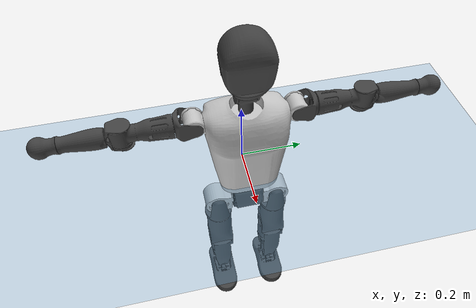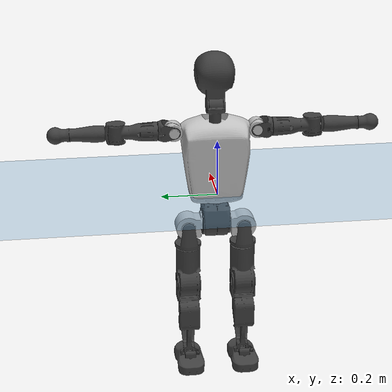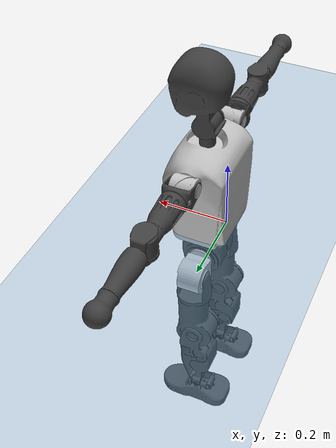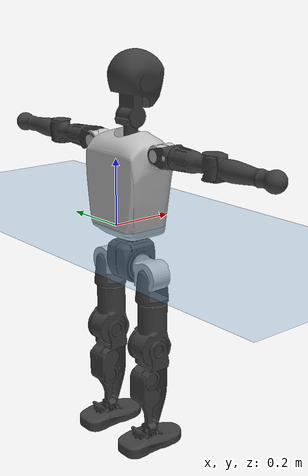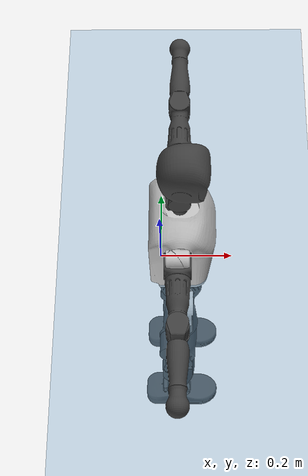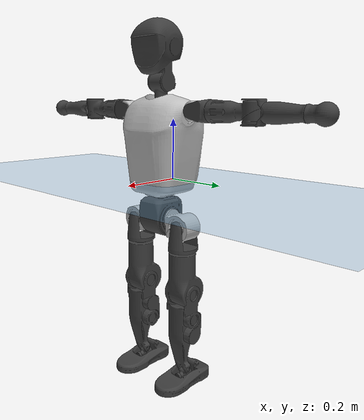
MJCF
<mujoco model="T1">
  <compiler angle="radian" assetdir="assets" balanceinertia="true" inertiafromgeom="false"/>

  <option timestep="0.005" density="1.2" viscosity="2e-05"/>

  <size nkey="1"/>

  <visual>
    <quality shadowsize="8192"/>
    <map shadowclip="0.5"/>
  </visual>

  <default>
    <default class="/">
      <joint armature="0.01" damping="0.01" frictionloss="0.1"/>
      <geom contype="0" conaffinity="0" group="1" solref="-1000 -80"/>
      <site size="0.01 0.005 0.005" group="5"/>
      <general forcelimited="true" biastype="affine" gainprm="25" biasprm="0 -25 -0.6"/>
      <default class="t1">
        <geom rgba="0.25 0.25 0.25 1"/>
        <default class="visual">
          <geom type="mesh" group="2"/>
        </default>
        <default class="collision">
          <geom group="3"/>
        </default>
        <default class="foot">
          <geom size="0.1115 0.05 0.015" type="box" condim="6" group="4" priority="1" solimp="0.015 1 0.015"/>
        </default>
        <default class="reward_collision_sphere">
          <geom group="5" rgba="1 0 0 1"/>
        </default>
      </default>
    </default>
  </default>

  <asset>
    <texture type="skybox" colorspace="auto" name="//unnamed_texture_0" builtin="gradient" rgb1="0.95 0.95 0.95" rgb2="0.95 0.95 0.95" width="100" height="600"/>
    <texture type="2d" colorspace="auto" name="texplane" builtin="checker" rgb1="0.345 0.575 0.748" rgb2="0.345 0.575 0.748" markrgb="1 1 1" width="512" height="512"/>
    <material name="MatPlane" class="/" texture="texplane" texuniform="true" texrepeat="2 2" specular="0.9"/>
    <mesh name="Trunk" class="/" file="Trunk.stl"/>
    <mesh name="H1" class="/" file="H1.stl"/>
    <mesh name="H2" class="/" file="H2.stl"/>
    <mesh name="AL1" class="/" file="AL1.stl"/>
    <mesh name="AL2" class="/" file="AL2.stl"/>
    <mesh name="AL3" class="/" file="AL3.stl"/>
    <mesh name="left_hand_link" class="/" file="left_hand_link.stl"/>
    <mesh name="AR1" class="/" file="AR1.stl"/>
    <mesh name="AR2" class="/" file="AR2.stl"/>
    <mesh name="AR3" class="/" file="AR3.stl"/>
    <mesh name="right_hand_link" class="/" file="right_hand_link.stl"/>
    <mesh name="Waist" class="/" file="Waist.stl"/>
    <mesh name="Hip_Pitch_Left" class="/" file="Hip_Pitch_Left.stl"/>
    <mesh name="Hip_Roll_Left" class="/" file="Hip_Roll_Left.stl"/>
    <mesh name="Hip_Yaw_Left" class="/" file="Hip_Yaw_Left.stl"/>
    <mesh name="Shank_Left" class="/" file="Shank_Left.stl"/>
    <mesh name="Ankle_Cross_Left" class="/" file="Ankle_Cross_Left.stl"/>
    <mesh name="left_foot_link" class="/" file="left_foot_link.stl"/>
    <mesh name="Hip_Pitch_Right" class="/" file="Hip_Pitch_Right.stl"/>
    <mesh name="Hip_Roll_Right" class="/" file="Hip_Roll_Right.stl"/>
    <mesh name="Hip_Yaw_Right" class="/" file="Hip_Yaw_Right.stl"/>
    <mesh name="Shank_Right" class="/" file="Shank_Right.stl"/>
    <mesh name="Ankle_Cross_Right" class="/" file="Ankle_Cross_Right.stl"/>
    <mesh name="right_foot_link" class="/" file="right_foot_link.stl"/>
  </asset>

  <worldbody>
    <geom name="floor" class="/" size="100 100 0.125" type="plane" group="0" material="MatPlane"/>
    <light name="toplight_shadow" class="/" pos="0 0 5" dir="0.0990148 0.0990148 -0.990148" type="directional" ambient="0.04 0.04 0.04" diffuse="0.55 0.55 0.55" specular="0.12 0.12 0.12"/>
    <light name="toplight_fill" class="/" pos="0 0 5" dir="0.0990148 0.0990148 -0.990148" type="directional" castshadow="false" ambient="0.04 0.04 0.04" diffuse="0.3 0.3 0.3" specular="0.08 0.08 0.08"/>
    <body name="trunk" childclass="t1" pos="0.000305101 0.000840069 -5.35865e-05" quat="1 6.12018e-05 0.000113094 -0.000138303">
      <inertial pos="0.0485513 -0.000343083 0.110757" quat="0.99996 0.00124664 -0.00884145 0.000685919" mass="10.4802" diaginertia="0.0494536 0.0611553 0.0689174"/>
      <joint name="//unnamed_joint_0" type="free" armature="0" damping="0" frictionloss="0"/>
      <geom name="//unnamed_geom_1" class="visual" rgba="0.76 0.76 0.76 1" mesh="Trunk"/>
      <geom name="//unnamed_geom_2" class="collision" size="0.0721589 0.0962119 0.144318" pos="0.0531397 0 0.125614" type="box"/>
      <geom name="//unnamed_geom_3" class="reward_collision_sphere" size="0.110644" pos="0.0531397 0 0.104678"/>
      <geom name="//unnamed_geom_4" class="reward_collision_sphere" size="0.0144318" pos="0.0531397 0.0810827 0"/>
      <geom name="//unnamed_geom_5" class="reward_collision_sphere" size="0.0144318" pos="0.0531397 -0.0810827 0"/>
      <geom name="//unnamed_geom_6" class="reward_collision_sphere" size="0.0144318" pos="0.0531397 0.102069 0.188421"/>
      <geom name="//unnamed_geom_7" class="reward_collision_sphere" size="0.0144318" pos="0.0531397 -0.102069 0.188421"/>
      <site name="imu" pos="-0.0039176 0.00222014 0.0038905" size="0.00962119"/>
      <camera name="track" pos="0 -1.90783 0" quat="0.707107 0.707107 0 0" mode="trackcom"/>
      <camera name="ego_camera" pos="0.108051 0 0.439649" quat="-0.5 -0.5 0.5 0.5"/>
      <body name="H1" pos="0.0559324 -0.000970897 0.253561" quat="1 -7.99663e-05 -0.000226647 -0.000124117">
        <inertial pos="-0.000130231 -0.00101285 0.059385" quat="0.763033 -0.0126801 0.00174992 0.646233" mass="0.38651" diaginertia="0.00012853 0.000173485 0.000187807"/>
        <joint name="AAHead_yaw" pos="0 0 0" axis="0.00174898 -0.000522887 0.999998" range="-1.5745 1.56248" armature="0.0100728" damping="0.00983545" frictionloss="0.0967208"/>
        <geom name="//unnamed_geom_8" class="visual" mesh="H1"/>
        <body name="H2" pos="-0.00127931 0.000285936 0.0639683" quat="1 0.000172753 0.000125876 0.000184431">
          <inertial pos="0.00589887 0.000805255 0.103415" quat="0.988652 0.106128 -0.0743635 -0.0759823" mass="0.562416" diaginertia="0.00111082 0.00152586 0.00217313"/>
          <joint name="Head_pitch" pos="0 0 0" axis="0.00285624 -0.999994 -0.00189528" range="-1.22118 0.350563" armature="0.00939526" damping="0.00607977" frictionloss="0.101632"/>
          <geom name="//unnamed_geom_9" class="visual" mesh="H2"/>
          <geom name="//unnamed_geom_10" class="collision" size="0.0769695" pos="0.00885661 0 0.115146"/>
          <geom name="//unnamed_geom_11" class="reward_collision_sphere" size="0.0865907" pos="0.0177132 0 0.104678"/>
        </body>
      </body>
      <body name="AL1" pos="0.051717 0.101311 0.228474" quat="1 8.00001e-06 0.000427142 -2.59088e-05">
        <inertial pos="-0.00124241 0.0427177 -0.000144311" quat="0.504241 0.495637 -0.504286 0.495762" mass="0.468279" diaginertia="0.000742579 0.00101416 0.000368547"/>
        <joint name="Left_Shoulder_Pitch" pos="0 0 0" axis="-0.00214708 0.999989 -0.00412926" stiffness="0.000967045" range="-3.30661 1.23642" armature="0.00938342" damping="0.00829506" frictionloss="0.097047"/>
        <geom name="//unnamed_geom_12" class="visual" rgba="0.76 0.76 0.76 1" mesh="AL1"/>
        <body name="AL2" pos="0.00122691 0.0455297 0.000698266" quat="1 5.45545e-08 6.33388e-05 1.87774e-05">
          <inertial pos="0.00253247 0.0369059 7.26194e-05" quat="0.48856 0.509496 -0.488437 0.512983" mass="0.144154" diaginertia="0.000220292 0.000273597 0.000222931"/>
          <joint name="Left_Shoulder_Roll" pos="0 0 0" axis="-0.999994 0.00233715 0.00250908" range="-1.57014 1.74619" armature="0.00949815" damping="0.00543638" frictionloss="0.0953722"/>
          <geom name="//unnamed_geom_13" class="visual" mesh="AL2"/>
          <body name="AL3" pos="0.000609384 0.0583391 -0.000384793" quat="1 -0.000121144 -9.8069e-05 4.18073e-05">
            <inertial pos="0.000696056 0.0814818 -0.000272491" quat="0.707394 0.706815 -0.00231328 -0.00125788" mass="0.905174" diaginertia="0.00689863 0.0100435 0.000764877"/>
            <joint name="Left_Elbow_Pitch" pos="0 0 0" axis="0.000680042 -0.999999 0.000762645" range="-2.27257 2.25851" armature="0.00966485" damping="0.0151522" frictionloss="0.0996967"/>
            <geom name="//unnamed_geom_14" class="visual" mesh="AL3"/>
            <geom name="//unnamed_geom_15" class="collision" size="0.0288636 0.0721589" pos="0 0.0476957 0" quat="0.707105 0.707108 0 0" type="cylinder"/>
            <geom name="//unnamed_geom_16" class="reward_collision_sphere" size="0.0346363"/>
            <body name="left_hand_link" pos="0.000676232 0.139783 -0.000308052" quat="1 9.88213e-05 4.63016e-06 -0.000170345">
              <inertial pos="0.000131024 0.105502 0.000582186" quat="0.7081 0.706112 -0.000242968 4.78395e-07" mass="0.29095" diaginertia="0.00442146 0.00642725 0.000268733"/>
              <joint name="Left_Elbow_Yaw" pos="0 0 0" axis="0.000750928 0.00215849 0.999997" stiffness="0.00200707" range="-2.44071 -0.00526622" armature="0.0091431" damping="0.00800225" frictionloss="0.0960606"/>
              <geom name="//unnamed_geom_17" class="visual" mesh="left_hand_link"/>
              <geom name="//unnamed_geom_18" class="collision" size="0.0288636 0.0841854" pos="0 0.124009 0" quat="0.707105 0.707108 0 0" type="cylinder"/>
              <geom name="//unnamed_geom_19" class="reward_collision_sphere" size="0.048106"/>
              <geom name="//unnamed_geom_20" class="reward_collision_sphere" size="0.0336742" pos="0 0.104931 0"/>
              <geom name="//unnamed_geom_21" class="reward_collision_sphere" size="0.0336742" pos="0 0.205092 0"/>
            </body>
          </body>
        </body>
      </body>
      <body name="AR1" pos="0.0502025 -0.101932 0.229002" quat="1 -0.000309057 0.000701312 0.000265798">
        <inertial pos="-0.000744901 -0.0423841 -0.000773982" quat="0.504306 0.496084 -0.503947 0.495594" mass="0.475657" diaginertia="0.000755492 0.00103113 0.000369703"/>
        <joint name="Right_Shoulder_Pitch" pos="0 0 0" axis="0.00294692 -0.999994 -0.00186681" range="-1.24447 3.31145" armature="0.009659" damping="0.00577781" frictionloss="0.0993919"/>
        <geom name="//unnamed_geom_22" class="visual" rgba="0.76 0.76 0.76 1" mesh="AR1"/>
        <body name="AR2" pos="-0.000516411 -0.0444643 -0.000256558" quat="1 2.33695e-06 2.69279e-05 1.3042e-05">
          <inertial pos="0.00379666 -0.0362963 5.24809e-05" quat="0.513109 0.485721 -0.514033 0.486379" mass="0.143791" diaginertia="0.000220481 0.000272427 0.000223829"/>
          <joint name="Right_Shoulder_Roll" pos="0 0 0" axis="-0.999946 -0.00759024 0.00707996" range="-1.72611 1.58622" armature="0.00965782" damping="0.00717394" frictionloss="0.0949734"/>
          <geom name="//unnamed_geom_23" class="visual" mesh="AR2"/>
          <body name="AR3" pos="0.000519669 -0.0577366 0.000259869" quat="1 3.30646e-05 3.60961e-05 -1.16173e-05">
            <inertial pos="0.00071627 -0.0817451 -0.000738349" quat="0.707699 0.706509 0.00153879 0.00197353" mass="0.911537" diaginertia="0.00715835 0.0103491 0.000800618"/>
            <joint name="Right_Elbow_Pitch" pos="0 0 0" axis="0.00383462 0.999987 -0.00334178" range="-2.26568 2.24279" armature="0.00960329" damping="0.00609504" frictionloss="0.0922498"/>
            <geom name="//unnamed_geom_24" class="visual" mesh="AR3"/>
            <geom name="//unnamed_geom_25" class="collision" size="0.0288636 0.0721589" pos="0 -0.0476957 0" quat="0.707105 0.707108 0 0" type="cylinder"/>
            <geom name="//unnamed_geom_26" class="reward_collision_sphere" size="0.0346363"/>
            <body name="right_hand_link" pos="0.000595773 -0.13929 -0.000387453" quat="1 -1.53711e-05 -3.65727e-05 7.35879e-06">
              <inertial pos="0.000306714 -0.104703 0.00104132" quat="0.706088 0.708124 0.000288771 0.000550989" mass="0.288294" diaginertia="0.00432629 0.00641296 0.00026824"/>
              <joint name="Right_Elbow_Yaw" pos="0 0 0" axis="0.000297957 -0.000483701 1" stiffness="0.000286938" range="0.000374732 2.43871" armature="0.00975745" damping="0.00803504" frictionloss="0.0955232"/>
              <geom name="//unnamed_geom_27" class="visual" mesh="right_hand_link"/>
              <geom name="//unnamed_geom_28" class="collision" size="0.0288636 0.0841854" pos="0 -0.124009 0" quat="0.707105 0.707108 0 0" type="cylinder"/>
              <geom name="//unnamed_geom_29" class="reward_collision_sphere" size="0.048106"/>
              <geom name="//unnamed_geom_30" class="reward_collision_sphere" size="0.0336742" pos="0 -0.104931 0"/>
              <geom name="//unnamed_geom_31" class="reward_collision_sphere" size="0.0336742" pos="0 -0.205092 0"/>
            </body>
          </body>
        </body>
      </body>
      <body name="Waist" pos="0.0561359 -0.00161395 -0.121591" quat="1 0.000233828 -4.92883e-05 0.000105237">
        <inertial pos="0.00166004 -0.000972177 0.00741258" quat="0.983687 0.000801475 -0.179783 0.00608623" mass="2.33298" diaginertia="0.00295369 0.00428086 0.00607118"/>
        <joint name="Waist" pos="0 0 0" axis="-0.00206943 -0.000222147 0.999998" range="-1.55646 1.58173" armature="0.00962441" damping="0.00328751" frictionloss="0.0918313"/>
        <geom name="//unnamed_geom_32" class="visual" mesh="Waist"/>
        <body name="Hip_Pitch_Left" pos="-0.000220561 0.101672 0.000331387" quat="1 -0.000273021 -9.29685e-05 0.000304571">
          <inertial pos="0.00104761 -0.00713857 -0.0192515" quat="0.974977 0.221832 0.0142772 0.00243901" mass="0.916858" diaginertia="0.000993369 0.00116468 0.00159177"/>
          <joint name="Left_Hip_Pitch" pos="0 0 0" axis="-0.00205514 0.999996 0.00178361" range="-1.7901 1.57043" armature="0.00947619" damping="0.00850794" frictionloss="0.096215"/>
          <geom name="//unnamed_geom_33" class="visual" rgba="0.76 0.76 0.76 1" mesh="Hip_Pitch_Left"/>
          <body name="Hip_Roll_Left" pos="0.00108948 -0.000564935 -0.0208486" quat="1 0.000249389 0.000132655 0.000100346">
            <inertial pos="0.000814627 -0.000375581 -0.0560543" quat="0.707071 -0.00547456 -0.00710847 0.707085" mass="0.34755" diaginertia="0.00094696 0.00119721 0.000642698"/>
            <joint name="Left_Hip_Roll" pos="0 0 0" axis="-0.999997 0.00232244 -0.000221406" range="-1.55728 0.210309" armature="0.00988074" damping="0.00920293" frictionloss="0.0969119"/>
            <geom name="//unnamed_geom_34" class="visual" mesh="Hip_Roll_Left"/>
            <geom name="//unnamed_geom_35" class="reward_collision_sphere" size="0.0529166"/>
            <body name="Hip_Yaw_Left" pos="0.000537483 -0.000186183 -0.0848431" quat="1 1.66339e-05 2.39643e-05 2.99423e-06">
              <inertial pos="-0.00518065 -0.000447573 -0.0937165" quat="0.69663 -0.0334569 -0.031562 0.715955" mass="1.92043" diaginertia="0.0138618 0.019614 0.00319104"/>
              <joint name="Left_Hip_Yaw" pos="0 0 0" axis="-0.00113358 -0.000595391 -0.999999" stiffness="4.31254e-05" range="-1.017 1.03014" armature="0.00914249" damping="0.000989059" frictionloss="0.0962037"/>
              <geom name="//unnamed_geom_36" class="visual" mesh="Hip_Yaw_Left"/>
              <geom name="//unnamed_geom_37" class="collision" size="0.048106 0.0769695" type="cylinder"/>
              <body name="Shank_Left" pos="-0.0118483 0.00021246 -0.141292" quat="1 -0.000315629 0.00018544 1.44744e-05">
                <inertial pos="-0.00512172 0.000377873 -0.129967" quat="0.997573 0.00234853 -0.0217725 0.0660904" mass="1.56193" diaginertia="0.019096 0.0275506 0.00238563"/>
                <joint name="Left_Knee_Pitch" pos="0 0 0" axis="-0.000776883 0.999999 -0.00139158" range="-0.0208499 2.33506" armature="0.00973149" damping="0.0143972" frictionloss="0.0958081"/>
                <geom name="//unnamed_geom_38" class="visual" mesh="Shank_Left"/>
                <geom name="//unnamed_geom_39" class="collision" size="0.048106 0.0721589" pos="0 0 -0.125614" type="cylinder"/>
                <geom name="//unnamed_geom_40" class="reward_collision_sphere" size="0.0625378"/>
                <body name="Ankle_Cross_Left" pos="0.000888699 0.000354359 -0.293179" quat="1 3.816e-05 -2.16821e-05 -2.62161e-05">
                  <inertial pos="-0.00352434 0.000566859 -0.00825218" quat="0.443231 0.551 0.550965 0.443152" mass="0.0655177" diaginertia="1.56275e-05 2.01089e-05 1.42368e-05"/>
                  <joint name="Left_Ankle_Pitch" pos="0 0 0" axis="-0.0019428 0.999998 0.000700131" range="-0.853458 0.357572" armature="0.00961669" damping="0.00661489" frictionloss="0.0918054"/>
                  <geom name="//unnamed_geom_41" class="visual" mesh="Ankle_Cross_Left"/>
                  <body name="left_foot_link" pos="-0.00016635 -0.000707097 -0.0120939" quat="1 -0.000173652 -0.00039079 0.000112154">
                    <inertial pos="-0.000583928 0.00040432 -0.00914865" quat="0.00274071 0.623175 0.0017491 0.782076" mass="0.619012" diaginertia="0.00145816 0.00190051 0.00274488"/>
                    <joint name="Left_Ankle_Roll" pos="0 0 0" axis="-0.999999 0.00160979 0.000446998" range="-0.445075 0.431049" armature="0.00915326" damping="0.00764395" frictionloss="0.0947366"/>
                    <geom name="//unnamed_geom_42" class="visual" mesh="left_foot_link"/>
                    <geom name="left_foot" class="foot" size="0.10123 0.0501786 0.0145803" pos="0.00885661 0 -0.0157017"/>
                    <geom name="//unnamed_geom_44" class="reward_collision_sphere" size="0.0500302" pos="0.00885661 0 -0.0157017"/>
                    <geom name="//unnamed_geom_45" class="reward_collision_sphere" size="0.0288636" pos="0.0841378 -0.02194 -0.0157017"/>
                    <geom name="//unnamed_geom_46" class="reward_collision_sphere" size="0.0288636" pos="-0.0619963 -0.02194 -0.0157017"/>
                    <site name="left_foot" class="foot" pos="0.00885661 0 -0.0157017" size="0.00962119"/>
                  </body>
                </body>
              </body>
            </body>
          </body>
        </body>
        <body name="Hip_Pitch_Right" pos="-0.000770724 -0.101131 -0.000222707" quat="1 -0.000288244 0.000250816 9.62561e-06">
          <inertial pos="0.000189587 0.00785018 -0.0197382" quat="0.973627 -0.227628 0.0148107 -0.00404829" mass="0.906736" diaginertia="0.000985418 0.00115224 0.00155086"/>
          <joint name="Right_Hip_Pitch" pos="0 0 0" axis="-0.000166821 -1 -9.24235e-06" stiffness="0.00263243" range="-1.56639 1.79944" armature="0.00920645" damping="0.00880601" frictionloss="0.0990271"/>
          <geom name="//unnamed_geom_47" class="visual" rgba="0.76 0.76 0.76 1" mesh="Hip_Pitch_Right"/>
          <body name="Hip_Roll_Right" pos="0.000590526 -0.000460648 -0.0206316" quat="1 -4.51061e-05 1.07254e-08 1.93504e-05">
            <inertial pos="0.00132824 -0.000506466 -0.0569196" quat="0.708114 -0.00542891 -0.00592043 0.706053" mass="0.340674" diaginertia="0.000939555 0.0011768 0.000638138"/>
            <joint name="Right_Hip_Roll" pos="0 0 0" axis="-0.999999 -0.00132168 -0.000103656" stiffness="0.000839998" range="-0.201303 1.55248" armature="0.00987687" damping="0.00306218" frictionloss="0.0932925"/>
            <geom name="//unnamed_geom_48" class="visual" mesh="Hip_Roll_Right"/>
            <geom name="//unnamed_geom_49" class="reward_collision_sphere" size="0.0529166"/>
            <body name="Hip_Yaw_Right" pos="0.00107692 0.000761079 -0.086317" quat="1 -0.000352888 4.94425e-05 0.000326805">
              <inertial pos="-0.0064001 0.000621627 -0.0943358" quat="0.714702 -0.036952 -0.0333714 0.697655" mass="1.91955" diaginertia="0.013885 0.0197628 0.00322728"/>
              <joint name="Right_Hip_Yaw" pos="0 0 0" axis="-0.000348661 -0.000337569 -1" range="-1.00347 1.00534" armature="0.00990315" damping="0.00365567" frictionloss="0.0957076"/>
              <geom name="//unnamed_geom_50" class="visual" mesh="Hip_Yaw_Right"/>
              <geom name="//unnamed_geom_51" class="collision" size="0.048106 0.0769695" type="cylinder"/>
              <body name="Shank_Right" pos="-0.0111162 -0.000935007 -0.139738" quat="1 0.000392901 6.27988e-05 0.000231251">
                <inertial pos="-0.00614078 -0.000383967 -0.127994" quat="0.999165 -0.00122845 -0.0246441 -0.032566" mass="1.61699" diaginertia="0.0191687 0.0277089 0.00245708"/>
                <joint name="Right_Knee_Pitch" pos="0 0 0" axis="-0.00131138 -0.99999 0.00421713" range="-2.34416 -0.0204969" armature="0.0096848" damping="0.00970538" frictionloss="0.0976656"/>
                <geom name="//unnamed_geom_52" class="visual" mesh="Shank_Right"/>
                <geom name="//unnamed_geom_53" class="collision" size="0.048106 0.0721589" pos="0 0 -0.125614" type="cylinder"/>
                <geom name="//unnamed_geom_54" class="reward_collision_sphere" size="0.0625378"/>
                <body name="Ankle_Cross_Right" pos="-0.00146652 -0.000823537 -0.293452" quat="1 6.57765e-06 9.16973e-05 -2.2807e-05">
                  <inertial pos="-0.00337488 -2.57671e-05 -0.00813387" quat="0.443096 0.551035 0.551011 0.443185" mass="0.064868" diaginertia="1.5548e-05 2.0249e-05 1.43432e-05"/>
                  <joint name="Right_Ankle_Pitch" pos="0 0 0" axis="0.0026807 -0.999991 -0.00340169" range="-0.373924 0.870661" armature="0.00945624" damping="0.00847554" frictionloss="0.0941922"/>
                  <geom name="//unnamed_geom_55" class="visual" mesh="Ankle_Cross_Right"/>
                  <body name="right_foot_link" pos="-9.63982e-05 -0.000607387 -0.0132726" quat="1 8.10718e-05 -2.39464e-05 -5.1346e-05">
                    <inertial pos="3.43477e-05 -0.000406155 -0.00957092" quat="-0.00116644 0.618875 0.00312305 0.785482" mass="0.616911" diaginertia="0.00145802 0.00187559 0.00273328"/>
                    <joint name="Right_Ankle_Roll" pos="0 0 0" axis="-1 -0.000602738 0.000457262" range="-0.449546 0.457264" armature="0.00948817" damping="0.0068616" frictionloss="0.0925657"/>
                    <geom name="//unnamed_geom_56" class="visual" mesh="right_foot_link"/>
                    <geom name="right_foot" class="foot" size="0.0983208 0.0454619 0.0143895" pos="0.00885661 0 -0.0157017"/>
                    <geom name="//unnamed_geom_58" class="reward_collision_sphere" size="0.0384848"/>
                    <geom name="//unnamed_geom_59" class="reward_collision_sphere" size="0.0288636" pos="0.00885661 0 -0.0157017"/>
                    <geom name="//unnamed_geom_60" class="reward_collision_sphere" size="0.0288636" pos="0.0841378 0.02194 -0.0157017"/>
                    <geom name="//unnamed_geom_61" class="reward_collision_sphere" size="0.0288636" pos="-0.0619963 0.02194 -0.0157017"/>
                    <site name="right_foot" class="foot" pos="0.00885661 0 -0.0157017" size="0.00962119"/>
                  </body>
                </body>
              </body>
            </body>
          </body>
        </body>
      </body>
    </body>
  </worldbody>

  <contact>
    <pair class="/" geom1="floor" geom2="left_foot" name="//unnamed_contact_0"/>
    <pair class="/" geom1="floor" geom2="right_foot" name="//unnamed_contact_1"/>
  </contact>

  <actuator>
    <general name="AAHead_yaw" class="/" joint="AAHead_yaw" forcerange="-6.72988 6.72988" gainprm="23.4403" biasprm="0 -23.4403 -0.551944"/>
    <general name="Head_pitch" class="/" joint="Head_pitch" forcerange="-6.73263 6.73263" gainprm="23.4403" biasprm="0 -23.4403 -0.551944"/>
    <general name="Left_Shoulder_Pitch" class="/" joint="Left_Shoulder_Pitch" forcerange="-16.4406 16.4406" gainprm="23.4403" biasprm="0 -23.4403 -0.551944"/>
    <general name="Left_Shoulder_Roll" class="/" joint="Left_Shoulder_Roll" forcerange="-17.1096 17.1096" gainprm="23.4403" biasprm="0 -23.4403 -0.551944"/>
    <general name="Left_Elbow_Pitch" class="/" joint="Left_Elbow_Pitch" forcerange="-17.8927 17.8927" gainprm="23.4403" biasprm="0 -23.4403 -0.551944"/>
    <general name="Left_Elbow_Yaw" class="/" joint="Left_Elbow_Yaw" forcerange="-17.3674 17.3674" gainprm="23.4403" biasprm="0 -23.4403 -0.551944"/>
    <general name="Right_Shoulder_Pitch" class="/" joint="Right_Shoulder_Pitch" forcerange="-17.1477 17.1477" gainprm="23.4403" biasprm="0 -23.4403 -0.551944"/>
    <general name="Right_Shoulder_Roll" class="/" joint="Right_Shoulder_Roll" forcerange="-17.2251 17.2251" gainprm="23.4403" biasprm="0 -23.4403 -0.551944"/>
    <general name="Right_Elbow_Pitch" class="/" joint="Right_Elbow_Pitch" forcerange="-17.9618 17.9618" gainprm="23.4403" biasprm="0 -23.4403 -0.551944"/>
    <general name="Right_Elbow_Yaw" class="/" joint="Right_Elbow_Yaw" forcerange="-17.8177 17.8177" gainprm="23.4403" biasprm="0 -23.4403 -0.551944"/>
    <general name="Waist" class="/" joint="Waist" forcerange="-29.9326 29.9326" gainprm="23.4403" biasprm="0 -23.4403 -0.551944"/>
    <general name="Left_Hip_Pitch" class="/" joint="Left_Hip_Pitch" forcerange="-43.5623 43.5623" gainprm="23.4403" biasprm="0 -23.4403 -0.551944"/>
    <general name="Left_Hip_Roll" class="/" joint="Left_Hip_Roll" forcerange="-29.7819 29.7819" gainprm="23.4403" biasprm="0 -23.4403 -0.551944"/>
    <general name="Left_Hip_Yaw" class="/" joint="Left_Hip_Yaw" forcerange="-29.8506 29.8506" gainprm="23.4403" biasprm="0 -23.4403 -0.551944"/>
    <general name="Left_Knee_Pitch" class="/" joint="Left_Knee_Pitch" forcerange="-56.434 56.434" gainprm="23.4403" biasprm="0 -23.4403 -0.551944"/>
    <general name="Left_Ankle_Pitch" class="/" joint="Left_Ankle_Pitch" forcerange="-19.671 19.671" gainprm="23.4403" biasprm="0 -23.4403 -0.551944"/>
    <general name="Left_Ankle_Roll" class="/" joint="Left_Ankle_Roll" forcerange="-14.3812 14.3812" gainprm="23.4403" biasprm="0 -23.4403 -0.551944"/>
    <general name="Right_Hip_Pitch" class="/" joint="Right_Hip_Pitch" forcerange="-42.8478 42.8478" gainprm="23.4403" biasprm="0 -23.4403 -0.551944"/>
    <general name="Right_Hip_Roll" class="/" joint="Right_Hip_Roll" forcerange="-28.9682 28.9682" gainprm="23.4403" biasprm="0 -23.4403 -0.551944"/>
    <general name="Right_Hip_Yaw" class="/" joint="Right_Hip_Yaw" forcerange="-29.5857 29.5857" gainprm="23.4403" biasprm="0 -23.4403 -0.551944"/>
    <general name="Right_Knee_Pitch" class="/" joint="Right_Knee_Pitch" forcerange="-59.4029 59.4029" gainprm="23.4403" biasprm="0 -23.4403 -0.551944"/>
    <general name="Right_Ankle_Pitch" class="/" joint="Right_Ankle_Pitch" forcerange="-19.4944 19.4944" gainprm="23.4403" biasprm="0 -23.4403 -0.551944"/>
    <general name="Right_Ankle_Roll" class="/" joint="Right_Ankle_Roll" forcerange="-14.2971 14.2971" gainprm="23.4403" biasprm="0 -23.4403 -0.551944"/>
  </actuator>

  <sensor>
    <gyro site="imu" name="imu_angular_velocity"/>
    <velocimeter site="imu" name="imu_linear_velocity"/>
    <framelinvel objtype="site" objname="left_foot" name="left_foot_global_linear_velocity"/>
    <framelinvel objtype="site" objname="right_foot" name="right_foot_global_linear_velocity"/>
  </sensor>

  <keyframe>
    <key name="home" qpos="0 0 0.6385 1 0 0 0 0 0 0 1.4 0 -0.4 0 -1.4 0 0.4 0 -0.4 0 0 0.8 -0.4 0 0.4 0 0 -0.8 0.4 0"/>
  </keyframe>
</mujoco>
